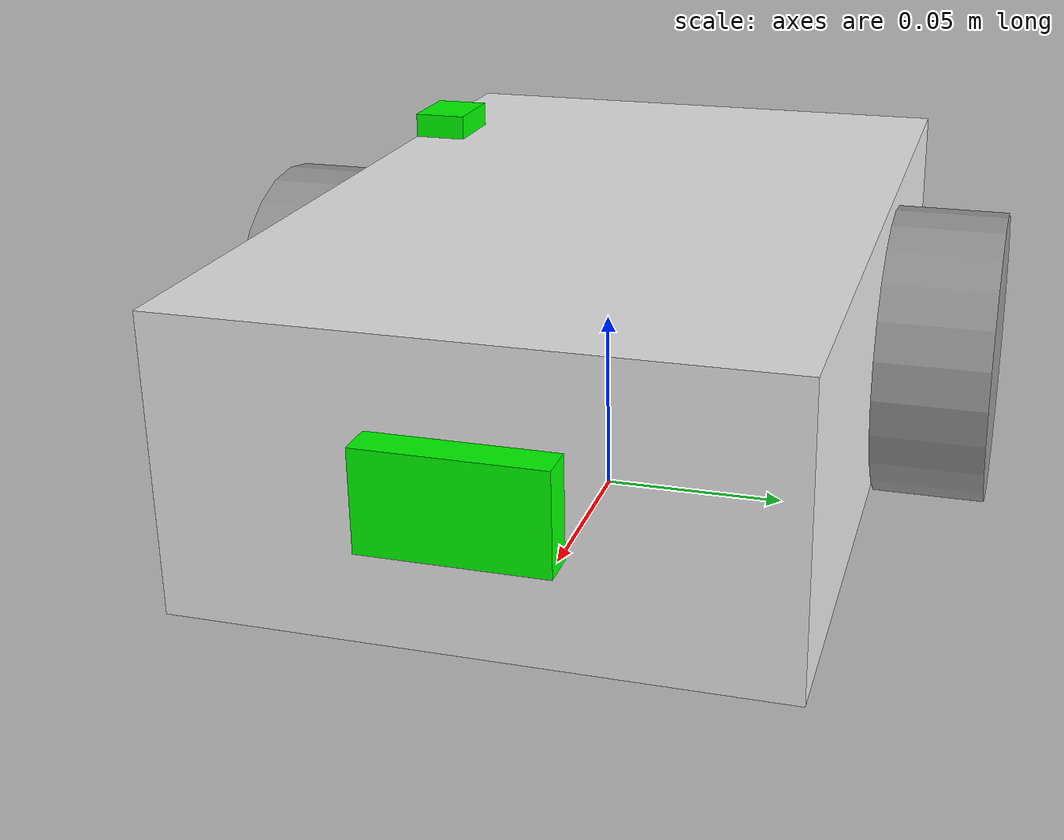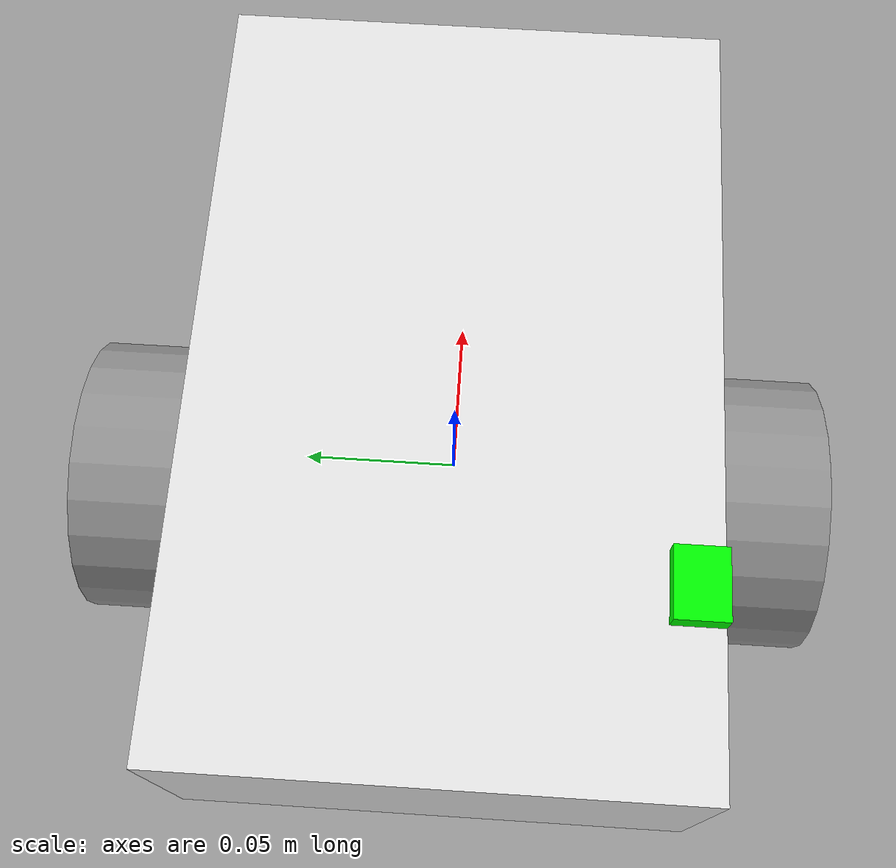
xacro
<?xml version="1.0"?>
<robot name="Nav2bot" xmlns:xacro="http://www.ros.org/wiki/xacro">

    <!-- Define el tf_prefix para este robot -->
    <xacro:property name="tf_prefix" value=""/>

    <!-- Incluye propiedades y base -->
    <xacro:include filename="$(find diffdrive_description)/urdf/common_properties.xacro"/>
    <xacro:include filename="$(find diffdrive_description)/urdf/mobile_base.xacro"/>

</robot>

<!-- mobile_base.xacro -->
<robot xmlns:xacro="http://www.ros.org/wiki/xacro">
    <xacro:property name="tf_prefix" value=""/>
    <xacro:property name="base_length" value="0.23"/> <!-- Largo del chasis [m]-->
    <xacro:property name="base_width" value="0.15"/>  <!-- Ancho del chasis [m]-->
    <xacro:property name="base_height" value="0.075"/> <!-- Altura del chasis [m]-->
    <xacro:property name="wheel_radius" value="0.04"/> <!-- Radio de ruedas [m]-->
    <xacro:property name="wheel_length" value="0.03"/> <!-- Grosor de ruedas [m]-->
    <xacro:property name="caster_radius" value="0.009525"/>

    <link name="${tf_prefix}base_footprint"/>

    <!-- CHASIS PRINCIPAL -->
    <!--base_link
        Qué es Chasis principal del robot
        Ubicación Centro geométrico del chasis
    -->
    <link name="${tf_prefix}base_link">
        <visual>
            <geometry>
                <box size="${base_length} ${base_width} ${base_height}"/>
            </geometry>
            <origin xyz="0 0 ${base_height / 2.0}" rpy="0 0 0"/>
            <material name="white"/>
        </visual>
        <xacro:box_inertia m="1.6" l="${2*base_length}" w="${2*base_width}" h="${2*base_height}"
         xyz="0 0 ${2*base_height / 2.0}" rpy="0 0 0" />
        <collision>
            <geometry>
                <box size="${base_length} ${base_width} ${base_height}"/>
            </geometry>
            <origin xyz="0 0 ${base_height / 2.0}" rpy="0 0 0"/>
        </collision>
    </link>

    <xacro:macro name="wheel_link" params="prefix">
        <link name="${prefix}_wheel_link">
            <visual>
                <geometry>
                    <cylinder radius="${wheel_radius}" length="${wheel_length}"/>
                </geometry>
                <origin xyz="0 0 0" rpy="${pi/2.0} 0 0"/>
                <material name ="grey"/>
            </visual>
            <xacro:cylinder_inertia m="0.5" r="${2*wheel_radius}" h="${2*wheel_length}" xyz="0 0 0" rpy="${pi/2.0} 0 0"/>
            <collision>
                <geometry>
                    <cylinder radius="${wheel_radius}" length="${wheel_length}"/>
                </geometry>
                <origin xyz="0 0 0" rpy="${pi/2.0} 0 0"/>
            </collision>
        </link>
    </xacro:macro>

    <xacro:wheel_link prefix="${tf_prefix}left"/>
    <xacro:wheel_link prefix="${tf_prefix}right"/>

    <!-- RUEDA LOCA -->
    <link name="${tf_prefix}caster_wheel_link">
        <visual>
            <geometry>
                <sphere radius="${caster_radius}"/>
            </geometry>
            <origin xyz="0 0 0" rpy="0 0 0"/>
            <material name="grey"/>
        </visual>
        <xacro:sphere_inertia m="0.2" r="${2*caster_radius}" xyz="0 0 0" rpy="0 0 0" />
        <collision>
            <geometry>
                <sphere radius="${caster_radius}"/>
            </geometry>
            <origin xyz="0 0 0" rpy="0 0 0"/>
        </collision>
    </link>

    <!-- IMU Link -->
    <link name="${tf_prefix}imu_link">
        <visual>
            <geometry>
                <box size="0.02 0.015 0.007"/>
            </geometry>
            <origin xyz="0 0 0" rpy="0 0 0"/>
            <material name="green">
                <color rgba="0 1 0 1"/>
            </material>
        </visual>
    </link>

    <!--sensor ultrasonico-->
    <link name = "${tf_prefix}range_link">
        <visual>
            <geometry>
                <box size = "0.018 0.045 0.025"/>
            </geometry>
            <material name="green">
                <color rgba="0 1 0 1"/>
            </material>
            <origin rpy="0 0 0" xyz="0 0 0"/>
        </visual>
    </link>

    <!--base_footprint
        Qué es Punto de contacto con el suelo (origen del robot)
        Ubicación Justo debajo del chasis, a altura de las ruedas
    -->
    <joint name="${tf_prefix}base_joint" type="fixed">
        <parent link="${tf_prefix}base_footprint"/>
        <child link="${tf_prefix}base_link"/>
        <origin xyz="0 0 0.01" rpy="0 0 0"/> <!--${wheel_radius}-->
    </joint>

    <joint name="${tf_prefix}base_right_wheel_joint" type="continuous">
        <parent link="${tf_prefix}base_link"/>
        <child link="${tf_prefix}right_wheel_link"/>
        <origin xyz="-0.023 -0.09 0.03" rpy="0 0 0"/>
        <axis xyz="0 1 0"/>
        <limit velocity="4.5" effort="2.5"/>
    </joint>

    <joint name="${tf_prefix}base_left_wheel_joint" type="continuous">
        <parent link="${tf_prefix}base_link"/>
        <child link="${tf_prefix}left_wheel_link"/>
        <origin xyz="-0.023 0.09 0.03" rpy="0 0 0"/>
        <axis xyz="0 1 0"/>
        <limit velocity="4.5" effort="2.5"/>
    </joint> <!--Velocidad angular máxima en radianes/segundo Par torsional máximo en Newton-metros (Nm) -->

    <joint name="${tf_prefix}base_caster_wheel_joint" type="fixed">
        <parent link="${tf_prefix}base_link"/>
        <child link="${tf_prefix}caster_wheel_link"/>
        <origin xyz="0.09 0 0" rpy="0 0 0"/>
    </joint>

    <!-- Joint between base_link and imu_link -->
    <joint name="${tf_prefix}imu_joint" type="fixed">
        <parent link="${tf_prefix}base_link"/>
        <child link="${tf_prefix}imu_link"/>
        <origin xyz="-0.06 -0.0675 ${base_height + 0.0035}" rpy="0 0 0"/>
    </joint>

    <!-- Joint between base_link and imu_link -->
    <joint name="${tf_prefix}range_joint" type="fixed">
        <parent link="${tf_prefix}base_link"/>
        <child link="${tf_prefix}range_link"/>
        <origin xyz="${base_length/2} 0 ${wheel_radius}" rpy="0 0 0"/>
    </joint>

</robot>
